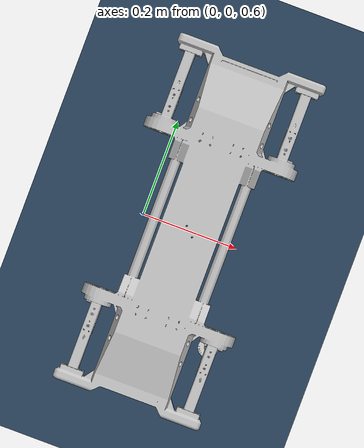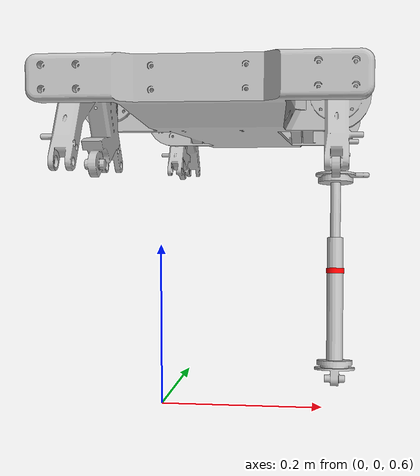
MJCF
<mujoco model="v2_4">
  <compiler angle="radian"/>
  <option timestep="0.001" iterations="1000"/>

  <default>
    <geom density="418"/>
  </default>

  <asset>
    <texture name="grid" type="2d" builtin="checker" rgb1=".1 .2 .3"
      rgb2=".2 .3 .4" width="300" height="300"/>
    <material name="grid" texture="grid" texrepeat="8 8" reflectance=".2"/>

    <mesh name="base_link" file="base_link.STL"/>
    <mesh name="LF_Thigh" file="LF_Thigh.STL"/>
    <mesh name="LF_Calf" file="LF_Calf.STL"/>
    <mesh name="RF_Thigh" file="RF_Thigh.STL"/>
    <mesh name="RF_Calf" file="RF_Calf.STL"/>
    <mesh name="LB_Thigh" file="LB_Thigh.STL"/>
    <mesh name="LB_Calf" file="LB_Calf.STL"/>
    <mesh name="RB_Thigh" file="RB_Thigh.STL"/>
    <mesh name="RB_Calf" file="RB_Calf.STL"/>
    <mesh name="LF_MAA_UPLink" file="LF_MAA_UPLink.STL"/>
    <mesh name="LF_MAA_FM_Link" file="LF_MAA_FM_Link.STL"/>
    <mesh name="LF_MAA_LOLink" file="LF_MAA_LOLink.STL"/>
    <mesh name="RF_MAA_UPLink" file="RF_MAA_UPLink.STL"/>
    <mesh name="RF_MAA_FM_Link" file="RF_MAA_FM_Link.STL"/>
    <mesh name="RF_MAA_LOLink" file="RF_MAA_LOLink.STL"/>
    <mesh name="LB_MAA_UPLink" file="LB_MAA_UPLink.STL"/>
    <mesh name="LB_MAA_FM_Link" file="LB_MAA_FM_Link.STL"/>
    <mesh name="LB_MAA_LOLink" file="LB_MAA_LOLink.STL"/>
    <mesh name="RB_MAA_UPLink" file="RB_MAA_UPLink.STL"/>
    <mesh name="RB_MAA_FM_Link" file="RB_MAA_FM_Link.STL"/>
    <mesh name="RB_MAA_LOLink" file="RB_MAA_LOLink.STL"/>
    <mesh name="LF_BAA_UPLink" file="LF_BAA_UPLink.STL"/>
    <mesh name="LF_BAA_FM_Link" file="LF_BAA_FM_Link.STL"/>
    <mesh name="LF_BAA_LOLink" file="LF_BAA_LOLink.STL"/>
    <mesh name="RF_BAA_UPLink" file="RF_BAA_UPLink.STL"/>
    <mesh name="RF_BAA_FM_Link" file="RF_BAA_FM_Link.STL"/>
    <mesh name="RF_BAA_LOLink" file="RF_BAA_LOLink.STL"/>
    <mesh name="LB_BAA_UPLink" file="LB_BAA_UPLink.STL"/>
    <mesh name="LB_BAA_FM_Link" file="LB_BAA_FM_Link.STL"/>
    <mesh name="LB_BAA_LOLink" file="LB_BAA_LOLink.STL"/>
    <mesh name="RB_BAA_UPLink" file="RB_BAA_UPLink.STL"/>
    <mesh name="RB_BAA_FM_LINK" file="RB_BAA_FM_LINK.STL"/>
    <mesh name="RB_BAA_LOLink" file="RB_BAA_LOLink.STL"/>
  </asset>

  <worldbody>
    <light name="top" pos="0 0 5"/>
    <geom size="10 10 .01" type="plane" material="grid" friction="1 0.005 0.0001"/>

    <body name="base" pos="0.1 0 1">
      <geom type="mesh" rgba="0.75294 0.75294 0.75294 1" mesh="base_link" mass="0.155"/>

      <body name="RB_MAA_UPLink" pos="0.125 -0.175 -0.105">
        <joint name="RB_MAA_UpJoint" pos="0 0 0" axis="-1 0 0" damping="0.01" stiffness="0" springref="0"/>
        <geom type="mesh" rgba="0.752941 0.752941 0.752941 1" mesh="RB_MAA_UPLink" mass="0.03"/>

        <body name="RB_MAA_FM_Link" pos="-0.01 -0.015 -0.105">
          <joint name="RB_MAA_SlideJoint" pos="0 0 0" axis="0 -0.141421 -0.989949" type="slide" damping="10" stiffness="100" springref="0"/>
          <geom type="mesh" rgba="1 0 0 1" mesh="RB_MAA_FM_Link" mass="0.1236666667"/>

          <body name="RB_MAA_LOLink" pos="0.01 -0.015 -0.105">
            <joint name="RB_MAA_FM_SlideJoint" pos="0 0 0" axis="0 -0.141421 -0.989949" type="slide" damping="10" stiffness="100" springref="0"/>
            <geom type="mesh" rgba="0.752941 0.752941 0.752941 1" mesh="RB_MAA_LOLink" mass="0.03"/>
          </body>

        </body>

      </body>

    </body>

  </worldbody>

  <!-- 增加在RB_BAA_LowerJoint等关节中加入8个位置控制器，要求增加位置限制 -->
  <actuator>
  </actuator>

  <!-- 建立并联关系，如 RB_BAA_LOLink 应该与 RB_Calf 连接 -->
  <equality>
  </equality>

  <sensor>
  </sensor>

</mujoco>
